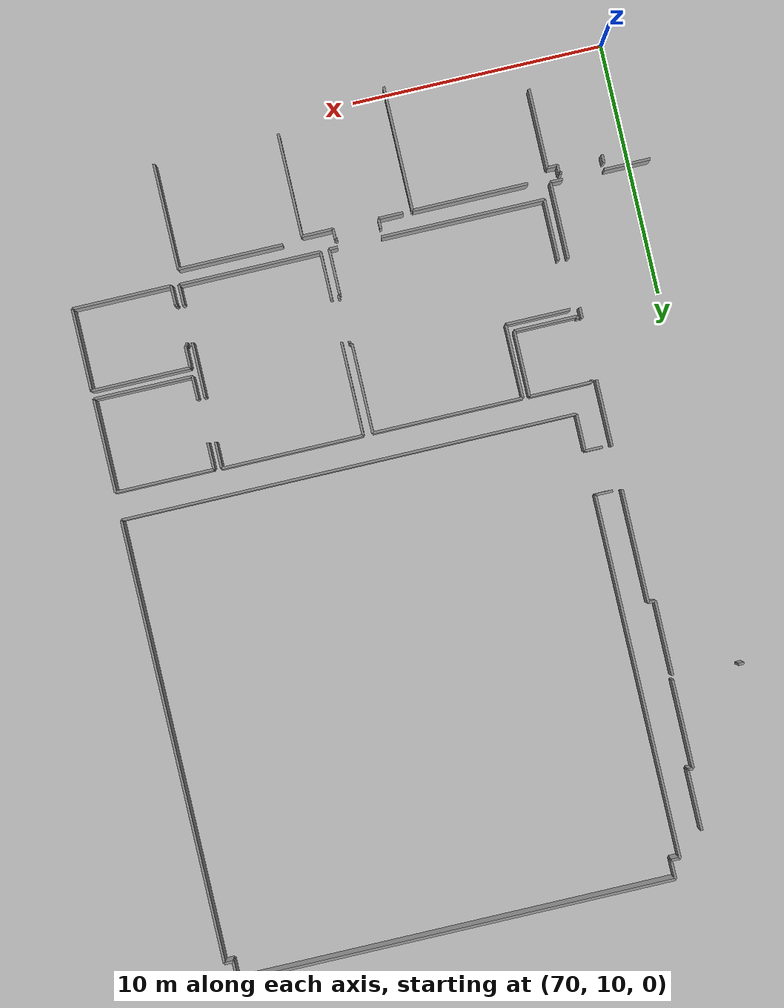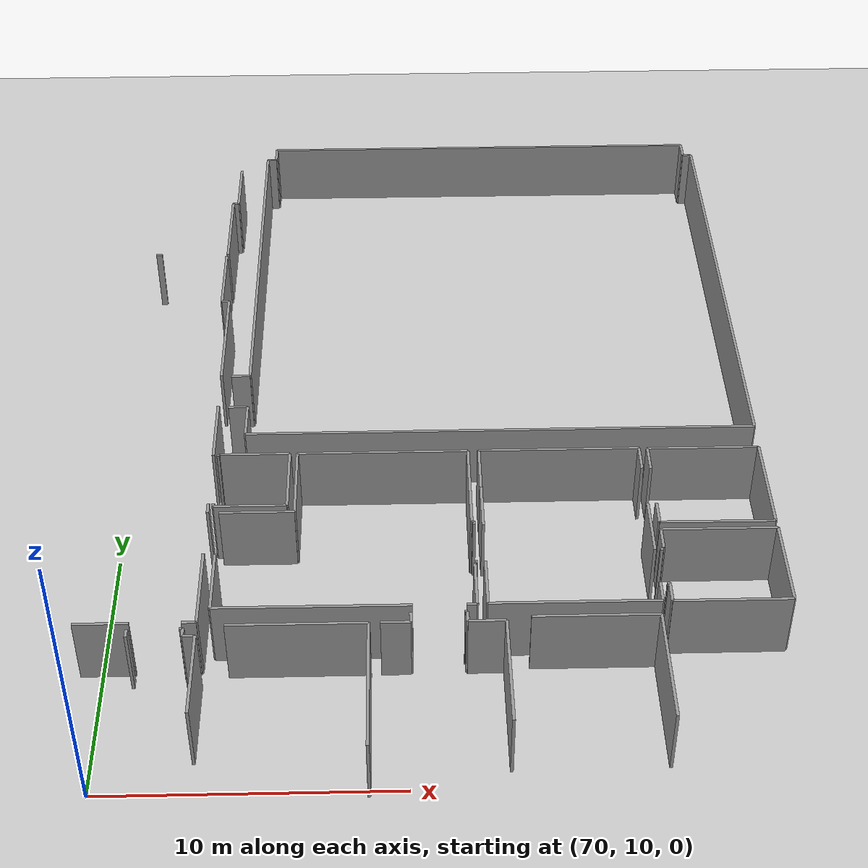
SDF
<sdf version="1.6">
 <world name="default">
  <model name="ground_plane">
   <static>1</static>
   <link name="link">
    <collision name="collision">
     <geometry><plane><normal>0 0 1</normal><size>100 100</size></plane></geometry>
     <surface><friction><ode><mu>100</mu><mu2>50</mu2></ode></friction></surface>
    </collision>
    <visual name="visual">
     <cast_shadows>0</cast_shadows>
     <geometry><plane><normal>0 0 1</normal><size>100 100</size></plane></geometry>
     <material>
      <script><uri>file://media/materials/scripts/gazebo.material</uri><name>Gazebo/Grey</name></script>
     </material>
    </visual>
   </link>
  </model>
  <model name="0510035739_A_40_1_102">
   <static>1</static>
   <link name="Wall_570">
    <collision name="Wall_570_Collision">
     <geometry><box><size>0.32578807473 0.1 2.5</size></box></geometry>
     <pose>0.162894037365 0 1.25 0 0 0</pose>
    </collision>
    <visual name="Wall_570_Visual">
     <pose>0.162894037365 0 1.25 0 0 0</pose>
     <geometry><box><size>0.32578807473 0.1 2.5</size></box></geometry>
     <material>
      <script><uri>file://media/materials/scripts/gazebo.material</uri><name>Gazebo/Grey</name></script>
      <ambient>1 1 1 1</ambient>
     </material>
    </visual>
    <pose>163.527018886 -35.5080982153 0 0 0 1.57079632679</pose>
   </link>
   <link name="Wall_571">
    <collision name="Wall_571_Collision">
     <geometry><box><size>0.108256396998 0.1 2.5</size></box></geometry>
     <pose>0.0541281984989 0 1.25 0 0 0</pose>
    </collision>
    <visual name="Wall_571_Visual">
     <pose>0.0541281984989 0 1.25 0 0 0</pose>
     <geometry><box><size>0.108256396998 0.1 2.5</size></box></geometry>
     <material>
      <script><uri>file://media/materials/scripts/gazebo.material</uri><name>Gazebo/Grey</name></script>
      <ambient>1 1 1 1</ambient>
     </material>
    </visual>
    <pose>165.208941214 -35.1823101406 0 0 0 0.0</pose>
   </link>
   <link name="Wall_572">
    <collision name="Wall_572_Collision">
     <geometry><box><size>0.315599237366 0.1 2.5</size></box></geometry>
     <pose>0.157799618683 0 1.25 0 0 0</pose>
    </collision>
    <visual name="Wall_572_Visual">
     <pose>0.157799618683 0 1.25 0 0 0</pose>
     <geometry><box><size>0.315599237366 0.1 2.5</size></box></geometry>
     <material>
      <script><uri>file://media/materials/scripts/gazebo.material</uri><name>Gazebo/Grey</name></script>
      <ambient>1 1 1 1</ambient>
     </material>
    </visual>
    <pose>165.317197611 -35.1823101406 0 0 0 -1.57079632679</pose>
   </link>
   <link name="Wall_573">
    <collision name="Wall_573_Collision">
     <geometry><box><size>0.408062936448 0.1 2.5</size></box></geometry>
     <pose>0.204031468224 0 1.25 0 0 0</pose>
    </collision>
    <visual name="Wall_573_Visual">
     <pose>0.204031468224 0 1.25 0 0 0</pose>
     <geometry><box><size>0.408062936448 0.1 2.5</size></box></geometry>
     <material>
      <script><uri>file://media/materials/scripts/gazebo.material</uri><name>Gazebo/Grey</name></script>
      <ambient>1 1 1 1</ambient>
     </material>
    </visual>
    <pose>165.317197611 -35.4979093779 0 0 0 0.0</pose>
   </link>
   <link name="Wall_574">
    <collision name="Wall_574_Collision">
     <geometry><box><size>3.15064323404 0.1 2.5</size></box></geometry>
     <pose>1.57532161702 0 1.25 0 0 0</pose>
    </collision>
    <visual name="Wall_574_Visual">
     <pose>1.57532161702 0 1.25 0 0 0</pose>
     <geometry><box><size>3.15064323404 0.1 2.5</size></box></geometry>
     <material>
      <script><uri>file://media/materials/scripts/gazebo.material</uri><name>Gazebo/Grey</name></script>
      <ambient>1 1 1 1</ambient>
     </material>
    </visual>
    <pose>165.725260548 -35.4979093779 0 0 0 -1.57079632679</pose>
   </link>
   <link name="Wall_895">
    <collision name="Wall_895_Collision">
     <geometry><box><size>2.42876410676 0.1 2.5</size></box></geometry>
     <pose>1.21438205338 0 1.25 0 0 0</pose>
    </collision>
    <visual name="Wall_895_Visual">
     <pose>1.21438205338 0 1.25 0 0 0</pose>
     <geometry><box><size>2.42876410676 0.1 2.5</size></box></geometry>
     <material>
      <script><uri>file://media/materials/scripts/gazebo.material</uri><name>Gazebo/Grey</name></script>
      <ambient>1 1 1 1</ambient>
     </material>
    </visual>
    <pose>165.714052827 -8.9664316017 0 0 0 -1.57079632679</pose>
   </link>
   <link name="Wall_896">
    <collision name="Wall_896_Collision">
     <geometry><box><size>0.219060003337 0.1 2.5</size></box></geometry>
     <pose>0.109530001668 0 1.25 0 0 0</pose>
    </collision>
    <visual name="Wall_896_Visual">
     <pose>0.109530001668 0 1.25 0 0 0</pose>
     <geometry><box><size>0.219060003337 0.1 2.5</size></box></geometry>
     <material>
      <script><uri>file://media/materials/scripts/gazebo.material</uri><name>Gazebo/Grey</name></script>
      <ambient>1 1 1 1</ambient>
     </material>
    </visual>
    <pose>165.714052827 -11.3951957085 0 0 0 3.14159265359</pose>
   </link>
   <link name="Wall_897">
    <collision name="Wall_897_Collision">
     <geometry><box><size>3.55106454246 0.1 2.5</size></box></geometry>
     <pose>1.77553227123 0 1.25 0 0 0</pose>
    </collision>
    <visual name="Wall_897_Visual">
     <pose>1.77553227123 0 1.25 0 0 0</pose>
     <geometry><box><size>3.55106454246 0.1 2.5</size></box></geometry>
     <material>
      <script><uri>file://media/materials/scripts/gazebo.material</uri><name>Gazebo/Grey</name></script>
      <ambient>1 1 1 1</ambient>
     </material>
    </visual>
    <pose>165.494992823 -11.3951957085 0 0 0 -1.57079632679</pose>
   </link>
   <link name="Wall_898">
    <collision name="Wall_898_Collision">
     <geometry><box><size>0.233324375647 0.1 2.5</size></box></geometry>
     <pose>0.116662187824 0 1.25 0 0 0</pose>
    </collision>
    <visual name="Wall_898_Visual">
     <pose>0.116662187824 0 1.25 0 0 0</pose>
     <geometry><box><size>0.233324375647 0.1 2.5</size></box></geometry>
     <material>
      <script><uri>file://media/materials/scripts/gazebo.material</uri><name>Gazebo/Grey</name></script>
      <ambient>1 1 1 1</ambient>
     </material>
    </visual>
    <pose>162.860923644 -14.9462602509 0 0 0 3.14159265359</pose>
   </link>
   <link name="Wall_904">
    <collision name="Wall_904_Collision">
     <geometry><box><size>2.97361218483 0.1 2.5</size></box></geometry>
     <pose>1.48680609242 0 1.25 0 0 0</pose>
    </collision>
    <visual name="Wall_904_Visual">
     <pose>1.48680609242 0 1.25 0 0 0</pose>
     <geometry><box><size>2.97361218483 0.1 2.5</size></box></geometry>
     <material>
      <script><uri>file://media/materials/scripts/gazebo.material</uri><name>Gazebo/Grey</name></script>
      <ambient>1 1 1 1</ambient>
     </material>
    </visual>
    <pose>165.453982753 -15.115904393 0 0 0 -1.57079632679</pose>
   </link>
   <link name="Wall_905">
    <collision name="Wall_905_Collision">
     <geometry><box><size>0.27560805071 0.1 2.5</size></box></geometry>
     <pose>0.137804025355 0 1.25 0 0 0</pose>
    </collision>
    <visual name="Wall_905_Visual">
     <pose>0.137804025355 0 1.25 0 0 0</pose>
     <geometry><box><size>0.27560805071 0.1 2.5</size></box></geometry>
     <material>
      <script><uri>file://media/materials/scripts/gazebo.material</uri><name>Gazebo/Grey</name></script>
      <ambient>1 1 1 1</ambient>
     </material>
    </visual>
    <pose>165.453982753 -18.0895165779 0 0 0 0.0</pose>
   </link>
   <link name="Wall_906">
    <collision name="Wall_906_Collision">
     <geometry><box><size>4.53224958067 0.1 2.5</size></box></geometry>
     <pose>2.26612479033 0 1.25 0 0 0</pose>
    </collision>
    <visual name="Wall_906_Visual">
     <pose>2.26612479033 0 1.25 0 0 0</pose>
     <geometry><box><size>4.53224958067 0.1 2.5</size></box></geometry>
     <material>
      <script><uri>file://media/materials/scripts/gazebo.material</uri><name>Gazebo/Grey</name></script>
      <ambient>1 1 1 1</ambient>
     </material>
    </visual>
    <pose>165.729590804 -18.0895165779 0 0 0 -1.57079632679</pose>
   </link>
   <link name="Wall_907">
    <collision name="Wall_907_Collision">
     <geometry><box><size>2.66998483137 0.1 2.5</size></box></geometry>
     <pose>1.33499241568 0 1.25 0 0 0</pose>
    </collision>
    <visual name="Wall_907_Visual">
     <pose>1.33499241568 0 1.25 0 0 0</pose>
     <geometry><box><size>2.66998483137 0.1 2.5</size></box></geometry>
     <material>
      <script><uri>file://media/materials/scripts/gazebo.material</uri><name>Gazebo/Grey</name></script>
      <ambient>1 1 1 1</ambient>
     </material>
    </visual>
    <pose>165.729590804 -24.3401135801 0 0 0 -1.57079632679</pose>
   </link>
   <link name="Wall_908">
    <collision name="Wall_908_Collision">
     <geometry><box><size>0.427676448375 0.1 2.5</size></box></geometry>
     <pose>0.213838224188 0 1.25 0 0 0</pose>
    </collision>
    <visual name="Wall_908_Visual">
     <pose>0.213838224188 0 1.25 0 0 0</pose>
     <geometry><box><size>0.427676448375 0.1 2.5</size></box></geometry>
     <material>
      <script><uri>file://media/materials/scripts/gazebo.material</uri><name>Gazebo/Grey</name></script>
      <ambient>1 1 1 1</ambient>
     </material>
    </visual>
    <pose>165.729590804 -29.4747781699 0 0 0 -1.57079632679</pose>
   </link>
   <link name="Wall_909">
    <collision name="Wall_909_Collision">
     <geometry><box><size>3.05257567441 0.1 2.5</size></box></geometry>
     <pose>1.5262878372 0 1.25 0 0 0</pose>
    </collision>
    <visual name="Wall_909_Visual">
     <pose>1.5262878372 0 1.25 0 0 0</pose>
     <geometry><box><size>3.05257567441 0.1 2.5</size></box></geometry>
     <material>
      <script><uri>file://media/materials/scripts/gazebo.material</uri><name>Gazebo/Grey</name></script>
      <ambient>1 1 1 1</ambient>
     </material>
    </visual>
    <pose>165.729590804 -31.871192718 0 0 0 -1.57079632679</pose>
   </link>
   <link name="Wall_910">
    <collision name="Wall_910_Collision">
     <geometry><box><size>0.478875356132 0.1 2.5</size></box></geometry>
     <pose>0.239437678066 0 1.25 0 0 0</pose>
    </collision>
    <visual name="Wall_910_Visual">
     <pose>0.239437678066 0 1.25 0 0 0</pose>
     <geometry><box><size>0.478875356132 0.1 2.5</size></box></geometry>
     <material>
      <script><uri>file://media/materials/scripts/gazebo.material</uri><name>Gazebo/Grey</name></script>
      <ambient>1 1 1 1</ambient>
     </material>
    </visual>
    <pose>165.729590804 -34.9237683924 0 0 0 3.14159265359</pose>
   </link>
   <link name="Wall_911">
    <collision name="Wall_911_Collision">
     <geometry><box><size>1.83042463253 0.1 2.5</size></box></geometry>
     <pose>0.915212316267 0 1.25 0 0 0</pose>
    </collision>
    <visual name="Wall_911_Visual">
     <pose>0.915212316267 0 1.25 0 0 0</pose>
     <geometry><box><size>1.83042463253 0.1 2.5</size></box></geometry>
     <material>
      <script><uri>file://media/materials/scripts/gazebo.material</uri><name>Gazebo/Grey</name></script>
      <ambient>1 1 1 1</ambient>
     </material>
    </visual>
    <pose>163.576944189 -34.9237683924 0 0 0 3.14159265359</pose>
   </link>
   <link name="Wall_944">
    <collision name="Wall_944_Collision">
     <geometry><box><size>1.48451360401 0.1 2.5</size></box></geometry>
     <pose>0.742256802004 0 1.25 0 0 0</pose>
    </collision>
    <visual name="Wall_944_Visual">
     <pose>0.742256802004 0 1.25 0 0 0</pose>
     <geometry><box><size>1.48451360401 0.1 2.5</size></box></geometry>
     <material>
      <script><uri>file://media/materials/scripts/gazebo.material</uri><name>Gazebo/Grey</name></script>
      <ambient>1 1 1 1</ambient>
     </material>
    </visual>
    <pose>166.795597913 -25.8903451851 0 0 0 1.57079632679</pose>
   </link>
   <link name="Wall_945">
    <collision name="Wall_945_Collision">
     <geometry><box><size>0.695133429193 0.1 2.5</size></box></geometry>
     <pose>0.347566714597 0 1.25 0 0 0</pose>
    </collision>
    <visual name="Wall_945_Visual">
     <pose>0.347566714597 0 1.25 0 0 0</pose>
     <geometry><box><size>0.695133429193 0.1 2.5</size></box></geometry>
     <material>
      <script><uri>file://media/materials/scripts/gazebo.material</uri><name>Gazebo/Grey</name></script>
      <ambient>1 1 1 1</ambient>
     </material>
    </visual>
    <pose>166.795597913 -24.4058315811 0 0 0 3.14159265359</pose>
   </link>
   <link name="Wall_946">
    <collision name="Wall_946_Collision">
     <geometry><box><size>0.687746522104 0.1 2.5</size></box></geometry>
     <pose>0.343873261052 0 1.25 0 0 0</pose>
    </collision>
    <visual name="Wall_946_Visual">
     <pose>0.343873261052 0 1.25 0 0 0</pose>
     <geometry><box><size>0.687746522104 0.1 2.5</size></box></geometry>
     <material>
      <script><uri>file://media/materials/scripts/gazebo.material</uri><name>Gazebo/Grey</name></script>
      <ambient>1 1 1 1</ambient>
     </material>
    </visual>
    <pose>166.100464484 -22.6464740891 0 0 0 0.0</pose>
   </link>
   <link name="Wall_947">
    <collision name="Wall_947_Collision">
     <geometry><box><size>14.543801175 0.1 2.5</size></box></geometry>
     <pose>7.27190058751 0 1.25 0 0 0</pose>
    </collision>
    <visual name="Wall_947_Visual">
     <pose>7.27190058751 0 1.25 0 0 0</pose>
     <geometry><box><size>14.543801175 0.1 2.5</size></box></geometry>
     <material>
      <script><uri>file://media/materials/scripts/gazebo.material</uri><name>Gazebo/Grey</name></script>
      <ambient>1 1 1 1</ambient>
     </material>
    </visual>
    <pose>166.788211006 -22.6464740891 0 0 0 1.57079632679</pose>
   </link>
   <link name="Wall_948">
    <collision name="Wall_948_Collision">
     <geometry><box><size>0.35304321468 0.1 2.5</size></box></geometry>
     <pose>0.17652160734 0 1.25 0 0 0</pose>
    </collision>
    <visual name="Wall_948_Visual">
     <pose>0.17652160734 0 1.25 0 0 0</pose>
     <geometry><box><size>0.35304321468 0.1 2.5</size></box></geometry>
     <material>
      <script><uri>file://media/materials/scripts/gazebo.material</uri><name>Gazebo/Grey</name></script>
      <ambient>1 1 1 1</ambient>
     </material>
    </visual>
    <pose>166.788211006 -8.10267291412 0 0 0 0.0</pose>
   </link>
   <link name="Wall_949">
    <collision name="Wall_949_Collision">
     <geometry><box><size>0.759832546458 0.1 2.5</size></box></geometry>
     <pose>0.379916273229 0 1.25 0 0 0</pose>
    </collision>
    <visual name="Wall_949_Visual">
     <pose>0.379916273229 0 1.25 0 0 0</pose>
     <geometry><box><size>0.759832546458 0.1 2.5</size></box></geometry>
     <material>
      <script><uri>file://media/materials/scripts/gazebo.material</uri><name>Gazebo/Grey</name></script>
      <ambient>1 1 1 1</ambient>
     </material>
    </visual>
    <pose>167.14125422 -8.10267291412 0 0 0 1.57079632679</pose>
   </link>
   <link name="Wall_950">
    <collision name="Wall_950_Collision">
     <geometry><box><size>17.5398288021 0.1 2.5</size></box></geometry>
     <pose>8.76991440103 0 1.25 0 0 0</pose>
    </collision>
    <visual name="Wall_950_Visual">
     <pose>8.76991440103 0 1.25 0 0 0</pose>
     <geometry><box><size>17.5398288021 0.1 2.5</size></box></geometry>
     <material>
      <script><uri>file://media/materials/scripts/gazebo.material</uri><name>Gazebo/Grey</name></script>
      <ambient>1 1 1 1</ambient>
     </material>
    </visual>
    <pose>167.14125422 -7.34284036766 0 0 0 0.0</pose>
   </link>
   <link name="Wall_951">
    <collision name="Wall_951_Collision">
     <geometry><box><size>0.785049918935 0.1 2.5</size></box></geometry>
     <pose>0.392524959468 0 1.25 0 0 0</pose>
    </collision>
    <visual name="Wall_951_Visual">
     <pose>0.392524959468 0 1.25 0 0 0</pose>
     <geometry><box><size>0.785049918935 0.1 2.5</size></box></geometry>
     <material>
      <script><uri>file://media/materials/scripts/gazebo.material</uri><name>Gazebo/Grey</name></script>
      <ambient>1 1 1 1</ambient>
     </material>
    </visual>
    <pose>184.681083022 -7.34284036766 0 0 0 -1.57079632679</pose>
   </link>
   <link name="Wall_952">
    <collision name="Wall_952_Collision">
     <geometry><box><size>0.342090214513 0.1 2.5</size></box></geometry>
     <pose>0.171045107257 0 1.25 0 0 0</pose>
    </collision>
    <visual name="Wall_952_Visual">
     <pose>0.171045107257 0 1.25 0 0 0</pose>
     <geometry><box><size>0.342090214513 0.1 2.5</size></box></geometry>
     <material>
      <script><uri>file://media/materials/scripts/gazebo.material</uri><name>Gazebo/Grey</name></script>
      <ambient>1 1 1 1</ambient>
     </material>
    </visual>
    <pose>184.681083022 -8.1278902866 0 0 0 0.0</pose>
   </link>
   <link name="Wall_953">
    <collision name="Wall_953_Collision">
     <geometry><box><size>17.7530302239 0.1 2.5</size></box></geometry>
     <pose>8.87651511196 0 1.25 0 0 0</pose>
    </collision>
    <visual name="Wall_953_Visual">
     <pose>8.87651511196 0 1.25 0 0 0</pose>
     <geometry><box><size>17.7530302239 0.1 2.5</size></box></geometry>
     <material>
      <script><uri>file://media/materials/scripts/gazebo.material</uri><name>Gazebo/Grey</name></script>
      <ambient>1 1 1 1</ambient>
     </material>
    </visual>
    <pose>185.023173237 -8.1278902866 0 0 0 -1.57079632679</pose>
   </link>
   <link name="Wall_954">
    <collision name="Wall_954_Collision">
     <geometry><box><size>18.2275777607 0.1 2.5</size></box></geometry>
     <pose>9.11378888035 0 1.25 0 0 0</pose>
    </collision>
    <visual name="Wall_954_Visual">
     <pose>9.11378888035 0 1.25 0 0 0</pose>
     <geometry><box><size>18.2275777607 0.1 2.5</size></box></geometry>
     <material>
      <script><uri>file://media/materials/scripts/gazebo.material</uri><name>Gazebo/Grey</name></script>
      <ambient>1 1 1 1</ambient>
     </material>
    </visual>
    <pose>185.023173237 -25.8809205105 0 0 0 -3.14107559778</pose>
   </link>
   <link name="Wall_955">
    <collision name="Wall_955_Collision">
     <geometry><box><size>2.49651987524 0.1 2.5</size></box></geometry>
     <pose>1.24825993762 0 1.25 0 0 0</pose>
    </collision>
    <visual name="Wall_955_Visual">
     <pose>1.24825993762 0 1.25 0 0 0</pose>
     <geometry><box><size>2.49651987524 0.1 2.5</size></box></geometry>
     <material>
      <script><uri>file://media/materials/scripts/gazebo.material</uri><name>Gazebo/Grey</name></script>
      <ambient>1 1 1 1</ambient>
     </material>
    </visual>
    <pose>165.921905109 -26.9685788992 0 0 0 0.0</pose>
   </link>
   <link name="Wall_956">
    <collision name="Wall_956_Collision">
     <geometry><box><size>2.62388034229 0.1 2.5</size></box></geometry>
     <pose>1.31194017115 0 1.25 0 0 0</pose>
    </collision>
    <visual name="Wall_956_Visual">
     <pose>1.31194017115 0 1.25 0 0 0</pose>
     <geometry><box><size>2.62388034229 0.1 2.5</size></box></geometry>
     <material>
      <script><uri>file://media/materials/scripts/gazebo.material</uri><name>Gazebo/Grey</name></script>
      <ambient>1 1 1 1</ambient>
     </material>
    </visual>
    <pose>168.418424984 -26.9685788992 0 0 0 -1.57079632679</pose>
   </link>
   <link name="Wall_957">
    <collision name="Wall_957_Collision">
     <geometry><box><size>2.5171522709 0.1 2.5</size></box></geometry>
     <pose>1.25857613545 0 1.25 0 0 0</pose>
    </collision>
    <visual name="Wall_957_Visual">
     <pose>1.25857613545 0 1.25 0 0 0</pose>
     <geometry><box><size>2.5171522709 0.1 2.5</size></box></geometry>
     <material>
      <script><uri>file://media/materials/scripts/gazebo.material</uri><name>Gazebo/Grey</name></script>
      <ambient>1 1 1 1</ambient>
     </material>
    </visual>
    <pose>168.418424984 -29.5924592415 0 0 0 3.14159265359</pose>
   </link>
   <link name="Wall_958">
    <collision name="Wall_958_Collision">
     <geometry><box><size>0.110039443537 0.1 2.5</size></box></geometry>
     <pose>0.0550197217683 0 1.25 0 0 0</pose>
    </collision>
    <visual name="Wall_958_Visual">
     <pose>0.0550197217683 0 1.25 0 0 0</pose>
     <geometry><box><size>0.110039443537 0.1 2.5</size></box></geometry>
     <material>
      <script><uri>file://media/materials/scripts/gazebo.material</uri><name>Gazebo/Grey</name></script>
      <ambient>1 1 1 1</ambient>
     </material>
    </visual>
    <pose>165.901272713 -29.5924592415 0 0 0 1.57079632679</pose>
   </link>
   <link name="Wall_959">
    <collision name="Wall_959_Collision">
     <geometry><box><size>0.0897724173036 0.1 2.5</size></box></geometry>
     <pose>0.0448862086518 0 1.25 0 0 0</pose>
    </collision>
    <visual name="Wall_959_Visual">
     <pose>0.0448862086518 0 1.25 0 0 0</pose>
     <geometry><box><size>0.0897724173036 0.1 2.5</size></box></geometry>
     <material>
      <script><uri>file://media/materials/scripts/gazebo.material</uri><name>Gazebo/Grey</name></script>
      <ambient>1 1 1 1</ambient>
     </material>
    </visual>
    <pose>165.901272713 -27.0559481796 0 0 0 1.33889331209</pose>
   </link>
   <link name="Wall_960">
    <collision name="Wall_960_Collision">
     <geometry><box><size>2.43411324638 0.1 2.5</size></box></geometry>
     <pose>1.21705662319 0 1.25 0 0 0</pose>
    </collision>
    <visual name="Wall_960_Visual">
     <pose>1.21705662319 0 1.25 0 0 0</pose>
     <geometry><box><size>2.43411324638 0.1 2.5</size></box></geometry>
     <material>
      <script><uri>file://media/materials/scripts/gazebo.material</uri><name>Gazebo/Grey</name></script>
      <ambient>1 1 1 1</ambient>
     </material>
    </visual>
    <pose>166.115238298 -34.3182967321 0 0 0 1.57079632679</pose>
   </link>
   <link name="Wall_961">
    <collision name="Wall_961_Collision">
     <geometry><box><size>2.5716625508 0.1 2.5</size></box></geometry>
     <pose>1.2858312754 0 1.25 0 0 0</pose>
    </collision>
    <visual name="Wall_961_Visual">
     <pose>1.2858312754 0 1.25 0 0 0</pose>
     <geometry><box><size>2.5716625508 0.1 2.5</size></box></geometry>
     <material>
      <script><uri>file://media/materials/scripts/gazebo.material</uri><name>Gazebo/Grey</name></script>
      <ambient>1 1 1 1</ambient>
     </material>
    </visual>
    <pose>166.115238298 -29.9141717813 0 0 0 0.0</pose>
   </link>
   <link name="Wall_962">
    <collision name="Wall_962_Collision">
     <geometry><box><size>2.94508344021 0.1 2.5</size></box></geometry>
     <pose>1.4725417201 0 1.25 0 0 0</pose>
    </collision>
    <visual name="Wall_962_Visual">
     <pose>1.4725417201 0 1.25 0 0 0</pose>
     <geometry><box><size>2.94508344021 0.1 2.5</size></box></geometry>
     <material>
      <script><uri>file://media/materials/scripts/gazebo.material</uri><name>Gazebo/Grey</name></script>
      <ambient>1 1 1 1</ambient>
     </material>
    </visual>
    <pose>168.686900849 -29.9141717813 0 0 0 1.57079632679</pose>
   </link>
   <link name="Wall_963">
    <collision name="Wall_963_Collision">
     <geometry><box><size>6.01523485907 0.1 2.5</size></box></geometry>
     <pose>3.00761742953 0 1.25 0 0 0</pose>
    </collision>
    <visual name="Wall_963_Visual">
     <pose>3.00761742953 0 1.25 0 0 0</pose>
     <geometry><box><size>6.01523485907 0.1 2.5</size></box></geometry>
     <material>
      <script><uri>file://media/materials/scripts/gazebo.material</uri><name>Gazebo/Grey</name></script>
      <ambient>1 1 1 1</ambient>
     </material>
    </visual>
    <pose>168.686900849 -26.969088341 0 0 0 0.0</pose>
   </link>
   <link name="Wall_964">
    <collision name="Wall_964_Collision">
     <geometry><box><size>3.56736668225 0.1 2.5</size></box></geometry>
     <pose>1.78368334112 0 1.25 0 0 0</pose>
    </collision>
    <visual name="Wall_964_Visual">
     <pose>1.78368334112 0 1.25 0 0 0</pose>
     <geometry><box><size>3.56736668225 0.1 2.5</size></box></geometry>
     <material>
      <script><uri>file://media/materials/scripts/gazebo.material</uri><name>Gazebo/Grey</name></script>
      <ambient>1 1 1 1</ambient>
     </material>
    </visual>
    <pose>174.702135708 -26.969088341 0 0 0 -1.57079632679</pose>
   </link>
   <link name="Wall_965">
    <collision name="Wall_965_Collision">
     <geometry><box><size>0.0832937454548 0.1 2.5</size></box></geometry>
     <pose>0.0416468727274 0 1.25 0 0 0</pose>
    </collision>
    <visual name="Wall_965_Visual">
     <pose>0.0416468727274 0 1.25 0 0 0</pose>
     <geometry><box><size>0.0832937454548 0.1 2.5</size></box></geometry>
     <material>
      <script><uri>file://media/materials/scripts/gazebo.material</uri><name>Gazebo/Grey</name></script>
      <ambient>1 1 1 1</ambient>
     </material>
    </visual>
    <pose>174.702135708 -30.5364550233 0 0 0 0.0</pose>
   </link>
   <link name="Wall_966">
    <collision name="Wall_966_Collision">
     <geometry><box><size>0.123794373979 0.1 2.5</size></box></geometry>
     <pose>0.0618971869894 0 1.25 0 0 0</pose>
    </collision>
    <visual name="Wall_966_Visual">
     <pose>0.0618971869894 0 1.25 0 0 0</pose>
     <geometry><box><size>0.123794373979 0.1 2.5</size></box></geometry>
     <material>
      <script><uri>file://media/materials/scripts/gazebo.material</uri><name>Gazebo/Grey</name></script>
      <ambient>1 1 1 1</ambient>
     </material>
    </visual>
    <pose>174.785429453 -30.5364550233 0 0 0 -1.57079632679</pose>
   </link>
   <link name="Wall_967">
    <collision name="Wall_967_Collision">
     <geometry><box><size>0.133219048541 0.1 2.5</size></box></geometry>
     <pose>0.0666095242704 0 1.25 0 0 0</pose>
    </collision>
    <visual name="Wall_967_Visual">
     <pose>0.0666095242704 0 1.25 0 0 0</pose>
     <geometry><box><size>0.133219048541 0.1 2.5</size></box></geometry>
     <material>
      <script><uri>file://media/materials/scripts/gazebo.material</uri><name>Gazebo/Grey</name></script>
      <ambient>1 1 1 1</ambient>
     </material>
    </visual>
    <pose>174.785429453 -32.3671343768 0 0 0 -1.57079632679</pose>
   </link>
   <link name="Wall_968">
    <collision name="Wall_968_Collision">
     <geometry><box><size>0.0504347449543 0.1 2.5</size></box></geometry>
     <pose>0.0252173724771 0 1.25 0 0 0</pose>
    </collision>
    <visual name="Wall_968_Visual">
     <pose>0.0252173724771 0 1.25 0 0 0</pose>
     <geometry><box><size>0.0504347449543 0.1 2.5</size></box></geometry>
     <material>
      <script><uri>file://media/materials/scripts/gazebo.material</uri><name>Gazebo/Grey</name></script>
      <ambient>1 1 1 1</ambient>
     </material>
    </visual>
    <pose>174.785429453 -32.5003534253 0 0 0 3.14159265359</pose>
   </link>
   <link name="Wall_969">
    <collision name="Wall_969_Collision">
     <geometry><box><size>1.83551905122 0.1 2.5</size></box></geometry>
     <pose>0.917759525608 0 1.25 0 0 0</pose>
    </collision>
    <visual name="Wall_969_Visual">
     <pose>0.917759525608 0 1.25 0 0 0</pose>
     <geometry><box><size>1.83551905122 0.1 2.5</size></box></geometry>
     <material>
      <script><uri>file://media/materials/scripts/gazebo.material</uri><name>Gazebo/Grey</name></script>
      <ambient>1 1 1 1</ambient>
     </material>
    </visual>
    <pose>174.734994708 -32.5003534253 0 0 0 -1.57079632679</pose>
   </link>
   <link name="Wall_970">
    <collision name="Wall_970_Collision">
     <geometry><box><size>0.339797726106 0.1 2.5</size></box></geometry>
     <pose>0.169898863053 0 1.25 0 0 0</pose>
    </collision>
    <visual name="Wall_970_Visual">
     <pose>0.169898863053 0 1.25 0 0 0</pose>
     <geometry><box><size>0.339797726106 0.1 2.5</size></box></geometry>
     <material>
      <script><uri>file://media/materials/scripts/gazebo.material</uri><name>Gazebo/Grey</name></script>
      <ambient>1 1 1 1</ambient>
     </material>
    </visual>
    <pose>174.734994708 -34.3358724765 0 0 0 3.14159265359</pose>
   </link>
   <link name="Wall_971">
    <collision name="Wall_971_Collision">
     <geometry><box><size>6.53514391991 0.1 2.5</size></box></geometry>
     <pose>3.26757195996 0 1.25 0 0 0</pose>
    </collision>
    <visual name="Wall_971_Visual">
     <pose>3.26757195996 0 1.25 0 0 0</pose>
     <geometry><box><size>6.53514391991 0.1 2.5</size></box></geometry>
     <material>
      <script><uri>file://media/materials/scripts/gazebo.material</uri><name>Gazebo/Grey</name></script>
      <ambient>1 1 1 1</ambient>
     </material>
    </visual>
    <pose>172.650358583 -34.3358724765 0 0 0 3.1389032307</pose>
   </link>
   <link name="Wall_972">
    <collision name="Wall_972_Collision">
     <geometry><box><size>1.91524670359 0.1 2.5</size></box></geometry>
     <pose>0.957623351796 0 1.25 0 0 0</pose>
    </collision>
    <visual name="Wall_972_Visual">
     <pose>0.957623351796 0 1.25 0 0 0</pose>
     <geometry><box><size>1.91524670359 0.1 2.5</size></box></geometry>
     <material>
      <script><uri>file://media/materials/scripts/gazebo.material</uri><name>Gazebo/Grey</name></script>
      <ambient>1 1 1 1</ambient>
     </material>
    </visual>
    <pose>175.085235993 -28.8718537189 0 0 0 1.57079632679</pose>
   </link>
   <link name="Wall_973">
    <collision name="Wall_973_Collision">
     <geometry><box><size>5.67008799335 0.1 2.5</size></box></geometry>
     <pose>2.83504399667 0 1.25 0 0 0</pose>
    </collision>
    <visual name="Wall_973_Visual">
     <pose>2.83504399667 0 1.25 0 0 0</pose>
     <geometry><box><size>5.67008799335 0.1 2.5</size></box></geometry>
     <material>
      <script><uri>file://media/materials/scripts/gazebo.material</uri><name>Gazebo/Grey</name></script>
      <ambient>1 1 1 1</ambient>
     </material>
    </visual>
    <pose>175.085235993 -26.9566070153 0 0 0 0.0</pose>
   </link>
   <link name="Wall_974">
    <collision name="Wall_974_Collision">
     <geometry><box><size>1.05403522536 0.1 2.5</size></box></geometry>
     <pose>0.527017612679 0 1.25 0 0 0</pose>
    </collision>
    <visual name="Wall_974_Visual">
     <pose>0.527017612679 0 1.25 0 0 0</pose>
     <geometry><box><size>1.05403522536 0.1 2.5</size></box></geometry>
     <material>
      <script><uri>file://media/materials/scripts/gazebo.material</uri><name>Gazebo/Grey</name></script>
      <ambient>1 1 1 1</ambient>
     </material>
    </visual>
    <pose>180.755323986 -26.9566070153 0 0 0 -1.57079632679</pose>
   </link>
   <link name="Wall_975">
    <collision name="Wall_975_Collision">
     <geometry><box><size>2.21072298716 0.1 2.5</size></box></geometry>
     <pose>1.10536149358 0 1.25 0 0 0</pose>
    </collision>
    <visual name="Wall_975_Visual">
     <pose>1.10536149358 0 1.25 0 0 0</pose>
     <geometry><box><size>2.21072298716 0.1 2.5</size></box></geometry>
     <material>
      <script><uri>file://media/materials/scripts/gazebo.material</uri><name>Gazebo/Grey</name></script>
      <ambient>1 1 1 1</ambient>
     </material>
    </visual>
    <pose>180.755323986 -29.7817168955 0 0 0 -1.57079632679</pose>
   </link>
   <link name="Wall_976">
    <collision name="Wall_976_Collision">
     <geometry><box><size>0.818673082238 0.1 2.5</size></box></geometry>
     <pose>0.409336541119 0 1.25 0 0 0</pose>
    </collision>
    <visual name="Wall_976_Visual">
     <pose>0.409336541119 0 1.25 0 0 0</pose>
     <geometry><box><size>0.818673082238 0.1 2.5</size></box></geometry>
     <material>
      <script><uri>file://media/materials/scripts/gazebo.material</uri><name>Gazebo/Grey</name></script>
      <ambient>1 1 1 1</ambient>
     </material>
    </visual>
    <pose>180.755323986 -33.4932556265 0 0 0 -1.57079632679</pose>
   </link>
   <link name="Wall_977">
    <collision name="Wall_977_Collision">
     <geometry><box><size>5.67008799335 0.1 2.5</size></box></geometry>
     <pose>2.83504399667 0 1.25 0 0 0</pose>
    </collision>
    <visual name="Wall_977_Visual">
     <pose>2.83504399667 0 1.25 0 0 0</pose>
     <geometry><box><size>5.67008799335 0.1 2.5</size></box></geometry>
     <material>
      <script><uri>file://media/materials/scripts/gazebo.material</uri><name>Gazebo/Grey</name></script>
      <ambient>1 1 1 1</ambient>
     </material>
    </visual>
    <pose>180.755323986 -34.3119287087 0 0 0 3.14159265359</pose>
   </link>
   <link name="Wall_978">
    <collision name="Wall_978_Collision">
     <geometry><box><size>1.90658619183 0.1 2.5</size></box></geometry>
     <pose>0.953293095916 0 1.25 0 0 0</pose>
    </collision>
    <visual name="Wall_978_Visual">
     <pose>0.953293095916 0 1.25 0 0 0</pose>
     <geometry><box><size>1.90658619183 0.1 2.5</size></box></geometry>
     <material>
      <script><uri>file://media/materials/scripts/gazebo.material</uri><name>Gazebo/Grey</name></script>
      <ambient>1 1 1 1</ambient>
     </material>
    </visual>
    <pose>175.085235993 -34.3119287087 0 0 0 1.57079632679</pose>
   </link>
   <link name="Wall_979">
    <collision name="Wall_979_Collision">
     <geometry><box><size>1.83067935347 0.1 2.5</size></box></geometry>
     <pose>0.915339676734 0 1.25 0 0 0</pose>
    </collision>
    <visual name="Wall_979_Visual">
     <pose>0.915339676734 0 1.25 0 0 0</pose>
     <geometry><box><size>1.83067935347 0.1 2.5</size></box></geometry>
     <material>
      <script><uri>file://media/materials/scripts/gazebo.material</uri><name>Gazebo/Grey</name></script>
      <ambient>1 1 1 1</ambient>
     </material>
    </visual>
    <pose>175.085235993 -30.7025330723 0 0 0 1.57079632679</pose>
   </link>
   <link name="Wall_980">
    <collision name="Wall_980_Collision">
     <geometry><box><size>0.924382269895 0.1 2.5</size></box></geometry>
     <pose>0.462191134947 0 1.25 0 0 0</pose>
    </collision>
    <visual name="Wall_980_Visual">
     <pose>0.462191134947 0 1.25 0 0 0</pose>
     <geometry><box><size>0.924382269895 0.1 2.5</size></box></geometry>
     <material>
      <script><uri>file://media/materials/scripts/gazebo.material</uri><name>Gazebo/Grey</name></script>
      <ambient>1 1 1 1</ambient>
     </material>
    </visual>
    <pose>181.055130525 -30.7101747004 0 0 0 1.57079632679</pose>
   </link>
   <link name="Wall_981">
    <collision name="Wall_981_Collision">
     <geometry><box><size>1.06422406272 0.1 2.5</size></box></geometry>
     <pose>0.532112031361 0 1.25 0 0 0</pose>
    </collision>
    <visual name="Wall_981_Visual">
     <pose>0.532112031361 0 1.25 0 0 0</pose>
     <geometry><box><size>1.06422406272 0.1 2.5</size></box></geometry>
     <material>
      <script><uri>file://media/materials/scripts/gazebo.material</uri><name>Gazebo/Grey</name></script>
      <ambient>1 1 1 1</ambient>
     </material>
    </visual>
    <pose>181.055130525 -28.0534353576 0 0 0 1.57079632679</pose>
   </link>
   <link name="Wall_982">
    <collision name="Wall_982_Collision">
     <geometry><box><size>3.94257061819 0.1 2.5</size></box></geometry>
     <pose>1.9712853091 0 1.25 0 0 0</pose>
    </collision>
    <visual name="Wall_982_Visual">
     <pose>1.9712853091 0 1.25 0 0 0</pose>
     <geometry><box><size>3.94257061819 0.1 2.5</size></box></geometry>
     <material>
      <script><uri>file://media/materials/scripts/gazebo.material</uri><name>Gazebo/Grey</name></script>
      <ambient>1 1 1 1</ambient>
     </material>
    </visual>
    <pose>181.055130525 -26.9892112948 0 0 0 0.0</pose>
   </link>
   <link name="Wall_983">
    <collision name="Wall_983_Collision">
     <geometry><box><size>3.73752026623 0.1 2.5</size></box></geometry>
     <pose>1.86876013312 0 1.25 0 0 0</pose>
    </collision>
    <visual name="Wall_983_Visual">
     <pose>1.86876013312 0 1.25 0 0 0</pose>
     <geometry><box><size>3.73752026623 0.1 2.5</size></box></geometry>
     <material>
      <script><uri>file://media/materials/scripts/gazebo.material</uri><name>Gazebo/Grey</name></script>
      <ambient>1 1 1 1</ambient>
     </material>
    </visual>
    <pose>184.997701144 -26.9892112948 0 0 0 -1.57079632679</pose>
   </link>
   <link name="Wall_984">
    <collision name="Wall_984_Collision">
     <geometry><box><size>3.94260538338 0.1 2.5</size></box></geometry>
     <pose>1.97130269169 0 1.25 0 0 0</pose>
    </collision>
    <visual name="Wall_984_Visual">
     <pose>1.97130269169 0 1.25 0 0 0</pose>
     <geometry><box><size>3.94260538338 0.1 2.5</size></box></geometry>
     <material>
      <script><uri>file://media/materials/scripts/gazebo.material</uri><name>Gazebo/Grey</name></script>
      <ambient>1 1 1 1</ambient>
     </material>
    </visual>
    <pose>184.997701144 -30.7267315611 0 0 0 3.1373931693</pose>
   </link>
   <link name="Wall_985">
    <collision name="Wall_985_Collision">
     <geometry><box><size>0.794219872563 0.1 2.5</size></box></geometry>
     <pose>0.397109936282 0 1.25 0 0 0</pose>
    </collision>
    <visual name="Wall_985_Visual">
     <pose>0.397109936282 0 1.25 0 0 0</pose>
     <geometry><box><size>0.794219872563 0.1 2.5</size></box></geometry>
     <material>
      <script><uri>file://media/materials/scripts/gazebo.material</uri><name>Gazebo/Grey</name></script>
      <ambient>1 1 1 1</ambient>
     </material>
    </visual>
    <pose>181.060479665 -34.3396932905 0 0 0 1.57079632679</pose>
   </link>
   <link name="Wall_986">
    <collision name="Wall_986_Collision">
     <geometry><box><size>0.0810012570478 0.1 2.5</size></box></geometry>
     <pose>0.0405006285239 0 1.25 0 0 0</pose>
    </collision>
    <visual name="Wall_986_Visual">
     <pose>0.0405006285239 0 1.25 0 0 0</pose>
     <geometry><box><size>0.0810012570478 0.1 2.5</size></box></geometry>
     <material>
      <script><uri>file://media/materials/scripts/gazebo.material</uri><name>Gazebo/Grey</name></script>
      <ambient>1 1 1 1</ambient>
     </material>
    </visual>
    <pose>181.060479665 -33.545473418 0 0 0 3.14159265359</pose>
   </link>
   <link name="Wall_987">
    <collision name="Wall_987_Collision">
     <geometry><box><size>0.128379350793 0.1 2.5</size></box></geometry>
     <pose>0.0641896753964 0 1.25 0 0 0</pose>
    </collision>
    <visual name="Wall_987_Visual">
     <pose>0.0641896753964 0 1.25 0 0 0</pose>
     <geometry><box><size>0.128379350793 0.1 2.5</size></box></geometry>
     <material>
      <script><uri>file://media/materials/scripts/gazebo.material</uri><name>Gazebo/Grey</name></script>
      <ambient>1 1 1 1</ambient>
     </material>
    </visual>
    <pose>180.979478408 -32.0342141159 0 0 0 1.57079632679</pose>
   </link>
   <link name="Wall_988">
    <collision name="Wall_988_Collision">
     <geometry><box><size>0.0774351639703 0.1 2.5</size></box></geometry>
     <pose>0.0387175819851 0 1.25 0 0 0</pose>
    </collision>
    <visual name="Wall_988_Visual">
     <pose>0.0387175819851 0 1.25 0 0 0</pose>
     <geometry><box><size>0.0774351639703 0.1 2.5</size></box></geometry>
     <material>
      <script><uri>file://media/materials/scripts/gazebo.material</uri><name>Gazebo/Grey</name></script>
      <ambient>1 1 1 1</ambient>
     </material>
    </visual>
    <pose>180.979478408 -31.9058347651 0 0 0 0.0</pose>
   </link>
   <link name="Wall_989">
    <collision name="Wall_989_Collision">
     <geometry><box><size>0.849494315266 0.1 2.5</size></box></geometry>
     <pose>0.424747157633 0 1.25 0 0 0</pose>
    </collision>
    <visual name="Wall_989_Visual">
     <pose>0.424747157633 0 1.25 0 0 0</pose>
     <geometry><box><size>0.849494315266 0.1 2.5</size></box></geometry>
     <material>
      <script><uri>file://media/materials/scripts/gazebo.material</uri><name>Gazebo/Grey</name></script>
      <ambient>1 1 1 1</ambient>
     </material>
    </visual>
    <pose>181.056913572 -31.9058347651 0 0 0 1.57079632679</pose>
   </link>
   <link name="Wall_990">
    <collision name="Wall_990_Collision">
     <geometry><box><size>3.95989164171 0.1 2.5</size></box></geometry>
     <pose>1.97994582086 0 1.25 0 0 0</pose>
    </collision>
    <visual name="Wall_990_Visual">
     <pose>1.97994582086 0 1.25 0 0 0</pose>
     <geometry><box><size>3.95989164171 0.1 2.5</size></box></geometry>
     <material>
      <script><uri>file://media/materials/scripts/gazebo.material</uri><name>Gazebo/Grey</name></script>
      <ambient>1 1 1 1</ambient>
     </material>
    </visual>
    <pose>181.056913572 -31.0563404498 0 0 0 0.0</pose>
   </link>
   <link name="Wall_991">
    <collision name="Wall_991_Collision">
     <geometry><box><size>3.28156979417 0.1 2.5</size></box></geometry>
     <pose>1.64078489709 0 1.25 0 0 0</pose>
    </collision>
    <visual name="Wall_991_Visual">
     <pose>1.64078489709 0 1.25 0 0 0</pose>
     <geometry><box><size>3.28156979417 0.1 2.5</size></box></geometry>
     <material>
      <script><uri>file://media/materials/scripts/gazebo.material</uri><name>Gazebo/Grey</name></script>
      <ambient>1 1 1 1</ambient>
     </material>
    </visual>
    <pose>185.016805214 -31.0563404498 0 0 0 -1.57079632679</pose>
   </link>
   <link name="Wall_992">
    <collision name="Wall_992_Collision">
     <geometry><box><size>3.95632595043 0.1 2.5</size></box></geometry>
     <pose>1.97816297522 0 1.25 0 0 0</pose>
    </collision>
    <visual name="Wall_992_Visual">
     <pose>1.97816297522 0 1.25 0 0 0</pose>
     <geometry><box><size>3.95632595043 0.1 2.5</size></box></geometry>
     <material>
      <script><uri>file://media/materials/scripts/gazebo.material</uri><name>Gazebo/Grey</name></script>
      <ambient>1 1 1 1</ambient>
     </material>
    </visual>
    <pose>185.016805214 -34.337910244 0 0 0 -3.14114197116</pose>
   </link>
   <link name="Wall_1005">
    <collision name="Wall_1005_Collision">
     <geometry><box><size>0.982458642872 0.1 2.5</size></box></geometry>
     <pose>0.491229321436 0 1.25 0 0 0</pose>
    </collision>
    <visual name="Wall_1005_Visual">
     <pose>0.491229321436 0 1.25 0 0 0</pose>
     <geometry><box><size>0.982458642872 0.1 2.5</size></box></geometry>
     <material>
      <script><uri>file://media/materials/scripts/gazebo.material</uri><name>Gazebo/Grey</name></script>
      <ambient>1 1 1 1</ambient>
     </material>
    </visual>
    <pose>171.605493312 -35.0628460225 0 0 0 0.0</pose>
   </link>
   <link name="Wall_1006">
    <collision name="Wall_1006_Collision">
     <geometry><box><size>0.402968517766 0.1 2.5</size></box></geometry>
     <pose>0.201484258883 0 1.25 0 0 0</pose>
    </collision>
    <visual name="Wall_1006_Visual">
     <pose>0.201484258883 0 1.25 0 0 0</pose>
     <geometry><box><size>0.402968517766 0.1 2.5</size></box></geometry>
     <material>
      <script><uri>file://media/materials/scripts/gazebo.material</uri><name>Gazebo/Grey</name></script>
      <ambient>1 1 1 1</ambient>
     </material>
    </visual>
    <pose>172.587951955 -35.0628460225 0 0 0 1.57079632679</pose>
   </link>
   <link name="Wall_1007">
    <collision name="Wall_1007_Collision">
     <geometry><box><size>0.081510698916 0.1 2.5</size></box></geometry>
     <pose>0.040755349458 0 1.25 0 0 0</pose>
    </collision>
    <visual name="Wall_1007_Visual">
     <pose>0.040755349458 0 1.25 0 0 0</pose>
     <geometry><box><size>0.081510698916 0.1 2.5</size></box></geometry>
     <material>
      <script><uri>file://media/materials/scripts/gazebo.material</uri><name>Gazebo/Grey</name></script>
      <ambient>1 1 1 1</ambient>
     </material>
    </visual>
    <pose>174.328205376 -34.6598775047 0 0 0 0.0</pose>
   </link>
   <link name="Wall_1008">
    <collision name="Wall_1008_Collision">
     <geometry><box><size>0.401185471227 0.1 2.5</size></box></geometry>
     <pose>0.200592735614 0 1.25 0 0 0</pose>
    </collision>
    <visual name="Wall_1008_Visual">
     <pose>0.200592735614 0 1.25 0 0 0</pose>
     <geometry><box><size>0.401185471227 0.1 2.5</size></box></geometry>
     <material>
      <script><uri>file://media/materials/scripts/gazebo.material</uri><name>Gazebo/Grey</name></script>
      <ambient>1 1 1 1</ambient>
     </material>
    </visual>
    <pose>174.409716075 -34.6598775047 0 0 0 -1.57079632679</pose>
   </link>
   <link name="Wall_1009">
    <collision name="Wall_1009_Collision">
     <geometry><box><size>1.24431176314 0.1 2.5</size></box></geometry>
     <pose>0.62215588157 0 1.25 0 0 0</pose>
    </collision>
    <visual name="Wall_1009_Visual">
     <pose>0.62215588157 0 1.25 0 0 0</pose>
     <geometry><box><size>1.24431176314 0.1 2.5</size></box></geometry>
     <material>
      <script><uri>file://media/materials/scripts/gazebo.material</uri><name>Gazebo/Grey</name></script>
      <ambient>1 1 1 1</ambient>
     </material>
    </visual>
    <pose>174.409716075 -35.0610629759 0 0 0 0.0</pose>
   </link>
   <link name="Wall_1010">
    <collision name="Wall_1010_Collision">
     <geometry><box><size>4.10024287641 0.1 2.5</size></box></geometry>
     <pose>2.05012143821 0 1.25 0 0 0</pose>
    </collision>
    <visual name="Wall_1010_Visual">
     <pose>2.05012143821 0 1.25 0 0 0</pose>
     <geometry><box><size>4.10024287641 0.1 2.5</size></box></geometry>
     <material>
      <script><uri>file://media/materials/scripts/gazebo.material</uri><name>Gazebo/Grey</name></script>
      <ambient>1 1 1 1</ambient>
     </material>
    </visual>
    <pose>175.654027838 -35.0610629759 0 0 0 -1.57079632679</pose>
   </link>
   <link name="Wall_1015">
    <collision name="Wall_1015_Collision">
     <geometry><box><size>4.61325083771 0.1 2.5</size></box></geometry>
     <pose>2.30662541886 0 1.25 0 0 0</pose>
    </collision>
    <visual name="Wall_1015_Visual">
     <pose>2.30662541886 0 1.25 0 0 0</pose>
     <geometry><box><size>4.61325083771 0.1 2.5</size></box></geometry>
     <material>
      <script><uri>file://media/materials/scripts/gazebo.material</uri><name>Gazebo/Grey</name></script>
      <ambient>1 1 1 1</ambient>
     </material>
    </visual>
    <pose>166.612708282 -35.0674309993 0 0 0 0.0</pose>
   </link>
   <link name="Wall_1016">
    <collision name="Wall_1016_Collision">
     <geometry><box><size>4.95075607541 0.1 2.5</size></box></geometry>
     <pose>2.47537803771 0 1.25 0 0 0</pose>
    </collision>
    <visual name="Wall_1016_Visual">
     <pose>2.47537803771 0 1.25 0 0 0</pose>
     <geometry><box><size>4.95075607541 0.1 2.5</size></box></geometry>
     <material>
      <script><uri>file://media/materials/scripts/gazebo.material</uri><name>Gazebo/Grey</name></script>
      <ambient>1 1 1 1</ambient>
     </material>
    </visual>
    <pose>171.22595912 -35.0674309993 0 0 0 -1.57079632679</pose>
   </link>
   <link name="Wall_1048">
    <collision name="Wall_1048_Collision">
     <geometry><box><size>4.18633855214 0.1 2.5</size></box></geometry>
     <pose>2.09316927607 0 1.25 0 0 0</pose>
    </collision>
    <visual name="Wall_1048_Visual">
     <pose>2.09316927607 0 1.25 0 0 0</pose>
     <geometry><box><size>4.18633855214 0.1 2.5</size></box></geometry>
     <material>
      <script><uri>file://media/materials/scripts/gazebo.material</uri><name>Gazebo/Grey</name></script>
      <ambient>1 1 1 1</ambient>
     </material>
    </visual>
    <pose>176.453596851 -34.9123059504 0 0 0 0.0</pose>
   </link>
   <link name="Wall_1049">
    <collision name="Wall_1049_Collision">
     <geometry><box><size>4.19983876165 0.1 2.5</size></box></geometry>
     <pose>2.09991938082 0 1.25 0 0 0</pose>
    </collision>
    <visual name="Wall_1049_Visual">
     <pose>2.09991938082 0 1.25 0 0 0</pose>
     <geometry><box><size>4.19983876165 0.1 2.5</size></box></geometry>
     <material>
      <script><uri>file://media/materials/scripts/gazebo.material</uri><name>Gazebo/Grey</name></script>
      <ambient>1 1 1 1</ambient>
     </material>
    </visual>
    <pose>180.639935403 -34.9123059504 0 0 0 -1.57079632679</pose>
   </link>
   <pose>-92.5 49.8157534709 0 0 0 0</pose>
  </model>
 </world>
</sdf>
